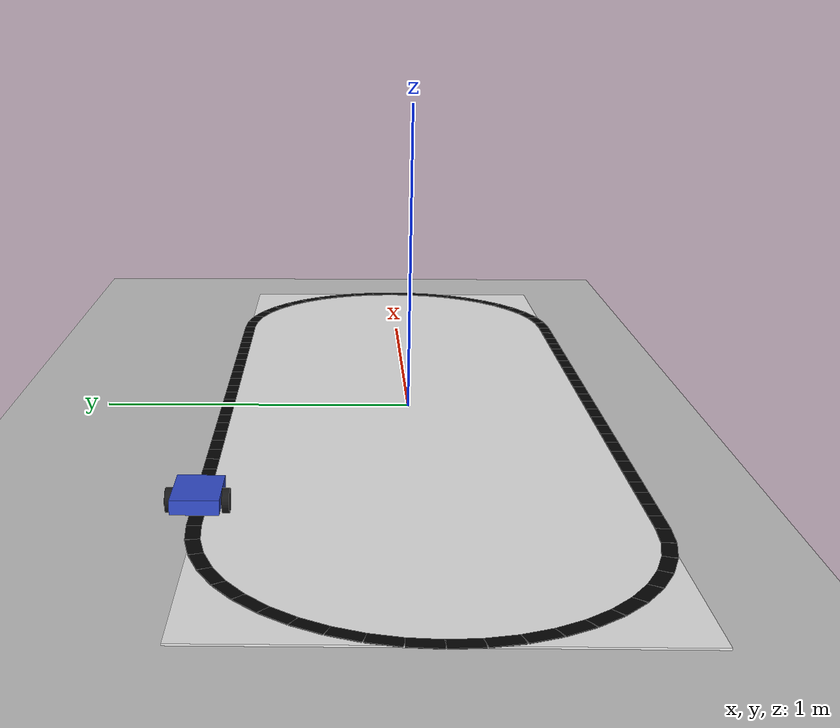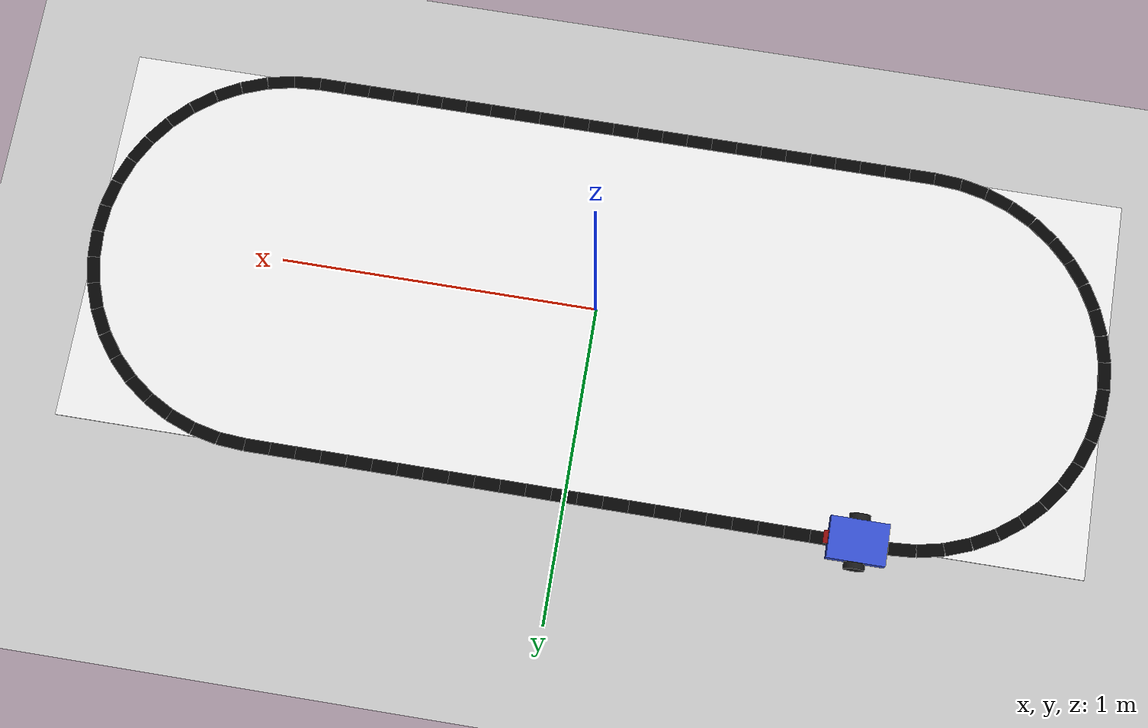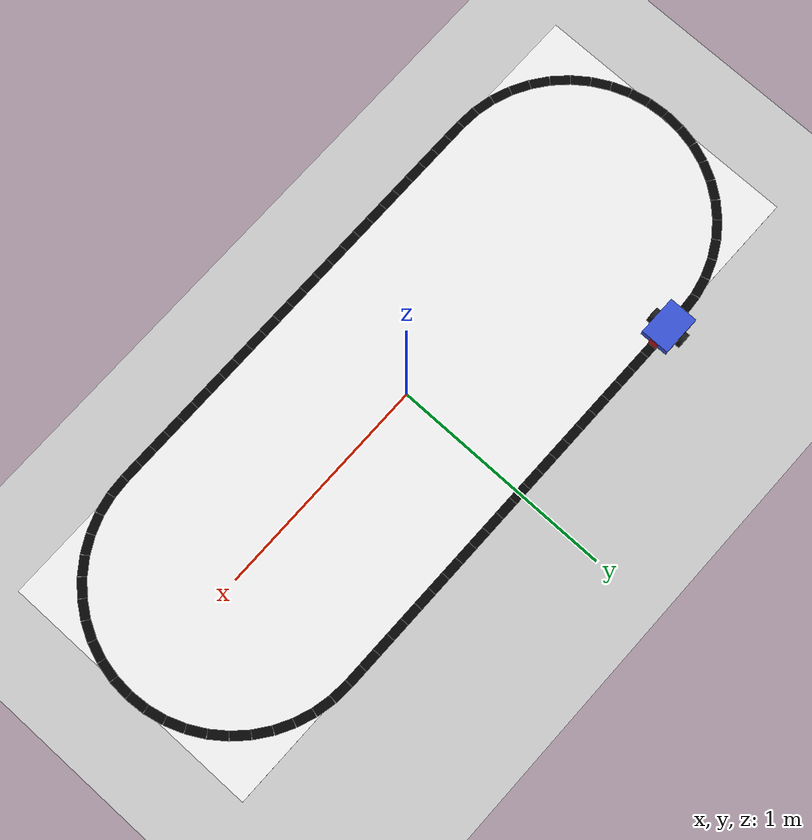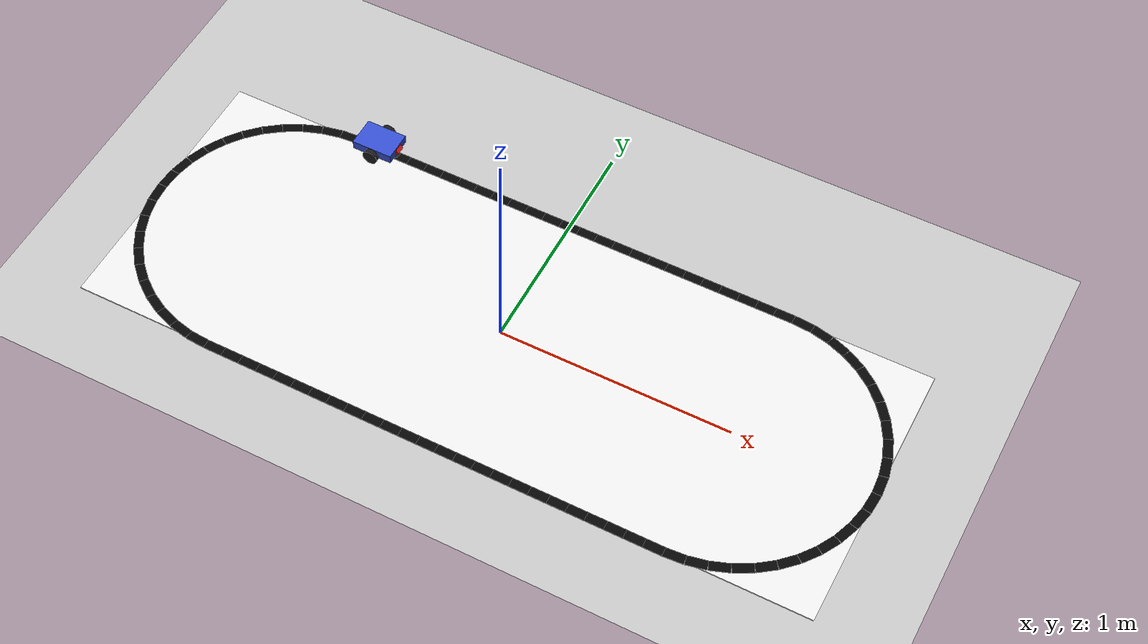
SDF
<sdf version="1.9">
 <world name="line_follower_world">
  <model name="ground_plane">
   <static>true</static>
   <link name="link">
    <collision name="collision">
     <geometry><plane><normal>0 0 1</normal><size>8 6</size></plane></geometry>
    </collision>
    <visual name="visual">
     <geometry><plane><normal>0 0 1</normal><size>8 6</size></plane></geometry>
     <material>
      <ambient>0.75 0.75 0.75 1</ambient>
      <diffuse>0.75 0.75 0.75 1</diffuse>
      <specular>0.1 0.1 0.1 1</specular>
     </material>
    </visual>
   </link>
  </model>
  <model name="line_track">
   <static>true</static>
   <link name="track_link">
    <visual name="track_visual">
     <geometry><box><size>3.2 1.2 0.005</size></box></geometry>
     <material><ambient>0.9 0.9 0.9 1</ambient><diffuse>0.9 0.9 0.9 1</diffuse></material>
    </visual>
    <visual name="line_segment_0">
     <pose>-0.9600 0.6000 0.006 0 0 0.0000</pose>
     <geometry><box><size>0.0800 0.04 0.002</size></box></geometry>
     <material>
      <ambient>0.02 0.02 0.02 1</ambient>
      <diffuse>0.02 0.02 0.02 1</diffuse>
      <specular>0.05 0.05 0.05 1</specular>
     </material>
    </visual>
    <visual name="line_segment_1">
     <pose>-0.8800 0.6000 0.006 0 0 0.0000</pose>
     <geometry><box><size>0.0800 0.04 0.002</size></box></geometry>
     <material>
      <ambient>0.02 0.02 0.02 1</ambient>
      <diffuse>0.02 0.02 0.02 1</diffuse>
      <specular>0.05 0.05 0.05 1</specular>
     </material>
    </visual>
    <visual name="line_segment_2">
     <pose>-0.8000 0.6000 0.006 0 0 0.0000</pose>
     <geometry><box><size>0.0800 0.04 0.002</size></box></geometry>
     <material>
      <ambient>0.02 0.02 0.02 1</ambient>
      <diffuse>0.02 0.02 0.02 1</diffuse>
      <specular>0.05 0.05 0.05 1</specular>
     </material>
    </visual>
    <visual name="line_segment_3">
     <pose>-0.7200 0.6000 0.006 0 0 0.0000</pose>
     <geometry><box><size>0.0800 0.04 0.002</size></box></geometry>
     <material>
      <ambient>0.02 0.02 0.02 1</ambient>
      <diffuse>0.02 0.02 0.02 1</diffuse>
      <specular>0.05 0.05 0.05 1</specular>
     </material>
    </visual>
    <visual name="line_segment_4">
     <pose>-0.6400 0.6000 0.006 0 0 0.0000</pose>
     <geometry><box><size>0.0800 0.04 0.002</size></box></geometry>
     <material>
      <ambient>0.02 0.02 0.02 1</ambient>
      <diffuse>0.02 0.02 0.02 1</diffuse>
      <specular>0.05 0.05 0.05 1</specular>
     </material>
    </visual>
    <visual name="line_segment_5">
     <pose>-0.5600 0.6000 0.006 0 0 0.0000</pose>
     <geometry><box><size>0.0800 0.04 0.002</size></box></geometry>
     <material>
      <ambient>0.02 0.02 0.02 1</ambient>
      <diffuse>0.02 0.02 0.02 1</diffuse>
      <specular>0.05 0.05 0.05 1</specular>
     </material>
    </visual>
    <visual name="line_segment_6">
     <pose>-0.4800 0.6000 0.006 0 0 0.0000</pose>
     <geometry><box><size>0.0800 0.04 0.002</size></box></geometry>
     <material>
      <ambient>0.02 0.02 0.02 1</ambient>
      <diffuse>0.02 0.02 0.02 1</diffuse>
      <specular>0.05 0.05 0.05 1</specular>
     </material>
    </visual>
    <visual name="line_segment_7">
     <pose>-0.4000 0.6000 0.006 0 0 0.0000</pose>
     <geometry><box><size>0.0800 0.04 0.002</size></box></geometry>
     <material>
      <ambient>0.02 0.02 0.02 1</ambient>
      <diffuse>0.02 0.02 0.02 1</diffuse>
      <specular>0.05 0.05 0.05 1</specular>
     </material>
    </visual>
    <visual name="line_segment_8">
     <pose>-0.3200 0.6000 0.006 0 0 0.0000</pose>
     <geometry><box><size>0.0800 0.04 0.002</size></box></geometry>
     <material>
      <ambient>0.02 0.02 0.02 1</ambient>
      <diffuse>0.02 0.02 0.02 1</diffuse>
      <specular>0.05 0.05 0.05 1</specular>
     </material>
    </visual>
    <visual name="line_segment_9">
     <pose>-0.2400 0.6000 0.006 0 0 0.0000</pose>
     <geometry><box><size>0.0800 0.04 0.002</size></box></geometry>
     <material>
      <ambient>0.02 0.02 0.02 1</ambient>
      <diffuse>0.02 0.02 0.02 1</diffuse>
      <specular>0.05 0.05 0.05 1</specular>
     </material>
    </visual>
    <visual name="line_segment_10">
     <pose>-0.1600 0.6000 0.006 0 0 0.0000</pose>
     <geometry><box><size>0.0800 0.04 0.002</size></box></geometry>
     <material>
      <ambient>0.02 0.02 0.02 1</ambient>
      <diffuse>0.02 0.02 0.02 1</diffuse>
      <specular>0.05 0.05 0.05 1</specular>
     </material>
    </visual>
    <visual name="line_segment_11">
     <pose>-0.0800 0.6000 0.006 0 0 0.0000</pose>
     <geometry><box><size>0.0800 0.04 0.002</size></box></geometry>
     <material>
      <ambient>0.02 0.02 0.02 1</ambient>
      <diffuse>0.02 0.02 0.02 1</diffuse>
      <specular>0.05 0.05 0.05 1</specular>
     </material>
    </visual>
    <visual name="line_segment_12">
     <pose>0.0000 0.6000 0.006 0 0 0.0000</pose>
     <geometry><box><size>0.0800 0.04 0.002</size></box></geometry>
     <material>
      <ambient>0.02 0.02 0.02 1</ambient>
      <diffuse>0.02 0.02 0.02 1</diffuse>
      <specular>0.05 0.05 0.05 1</specular>
     </material>
    </visual>
    <visual name="line_segment_13">
     <pose>0.0800 0.6000 0.006 0 0 0.0000</pose>
     <geometry><box><size>0.0800 0.04 0.002</size></box></geometry>
     <material>
      <ambient>0.02 0.02 0.02 1</ambient>
      <diffuse>0.02 0.02 0.02 1</diffuse>
      <specular>0.05 0.05 0.05 1</specular>
     </material>
    </visual>
    <visual name="line_segment_14">
     <pose>0.1600 0.6000 0.006 0 0 0.0000</pose>
     <geometry><box><size>0.0800 0.04 0.002</size></box></geometry>
     <material>
      <ambient>0.02 0.02 0.02 1</ambient>
      <diffuse>0.02 0.02 0.02 1</diffuse>
      <specular>0.05 0.05 0.05 1</specular>
     </material>
    </visual>
    <visual name="line_segment_15">
     <pose>0.2400 0.6000 0.006 0 0 0.0000</pose>
     <geometry><box><size>0.0800 0.04 0.002</size></box></geometry>
     <material>
      <ambient>0.02 0.02 0.02 1</ambient>
      <diffuse>0.02 0.02 0.02 1</diffuse>
      <specular>0.05 0.05 0.05 1</specular>
     </material>
    </visual>
    <visual name="line_segment_16">
     <pose>0.3200 0.6000 0.006 0 0 0.0000</pose>
     <geometry><box><size>0.0800 0.04 0.002</size></box></geometry>
     <material>
      <ambient>0.02 0.02 0.02 1</ambient>
      <diffuse>0.02 0.02 0.02 1</diffuse>
      <specular>0.05 0.05 0.05 1</specular>
     </material>
    </visual>
    <visual name="line_segment_17">
     <pose>0.4000 0.6000 0.006 0 0 0.0000</pose>
     <geometry><box><size>0.0800 0.04 0.002</size></box></geometry>
     <material>
      <ambient>0.02 0.02 0.02 1</ambient>
      <diffuse>0.02 0.02 0.02 1</diffuse>
      <specular>0.05 0.05 0.05 1</specular>
     </material>
    </visual>
    <visual name="line_segment_18">
     <pose>0.4800 0.6000 0.006 0 0 0.0000</pose>
     <geometry><box><size>0.0800 0.04 0.002</size></box></geometry>
     <material>
      <ambient>0.02 0.02 0.02 1</ambient>
      <diffuse>0.02 0.02 0.02 1</diffuse>
      <specular>0.05 0.05 0.05 1</specular>
     </material>
    </visual>
    <visual name="line_segment_19">
     <pose>0.5600 0.6000 0.006 0 0 0.0000</pose>
     <geometry><box><size>0.0800 0.04 0.002</size></box></geometry>
     <material>
      <ambient>0.02 0.02 0.02 1</ambient>
      <diffuse>0.02 0.02 0.02 1</diffuse>
      <specular>0.05 0.05 0.05 1</specular>
     </material>
    </visual>
    <visual name="line_segment_20">
     <pose>0.6400 0.6000 0.006 0 0 0.0000</pose>
     <geometry><box><size>0.0800 0.04 0.002</size></box></geometry>
     <material>
      <ambient>0.02 0.02 0.02 1</ambient>
      <diffuse>0.02 0.02 0.02 1</diffuse>
      <specular>0.05 0.05 0.05 1</specular>
     </material>
    </visual>
    <visual name="line_segment_21">
     <pose>0.7200 0.6000 0.006 0 0 0.0000</pose>
     <geometry><box><size>0.0800 0.04 0.002</size></box></geometry>
     <material>
      <ambient>0.02 0.02 0.02 1</ambient>
      <diffuse>0.02 0.02 0.02 1</diffuse>
      <specular>0.05 0.05 0.05 1</specular>
     </material>
    </visual>
    <visual name="line_segment_22">
     <pose>0.8000 0.6000 0.006 0 0 0.0000</pose>
     <geometry><box><size>0.0800 0.04 0.002</size></box></geometry>
     <material>
      <ambient>0.02 0.02 0.02 1</ambient>
      <diffuse>0.02 0.02 0.02 1</diffuse>
      <specular>0.05 0.05 0.05 1</specular>
     </material>
    </visual>
    <visual name="line_segment_23">
     <pose>0.8800 0.6000 0.006 0 0 0.0000</pose>
     <geometry><box><size>0.0800 0.04 0.002</size></box></geometry>
     <material>
      <ambient>0.02 0.02 0.02 1</ambient>
      <diffuse>0.02 0.02 0.02 1</diffuse>
      <specular>0.05 0.05 0.05 1</specular>
     </material>
    </visual>
    <visual name="line_segment_24">
     <pose>0.9600 0.6000 0.006 0 0 0.0000</pose>
     <geometry><box><size>0.0800 0.04 0.002</size></box></geometry>
     <material>
      <ambient>0.02 0.02 0.02 1</ambient>
      <diffuse>0.02 0.02 0.02 1</diffuse>
      <specular>0.05 0.05 0.05 1</specular>
     </material>
    </visual>
    <visual name="line_segment_25">
     <pose>1.0427 0.5969 0.006 0 0 -0.0714</pose>
     <geometry><box><size>0.0856 0.04 0.002</size></box></geometry>
     <material>
      <ambient>0.02 0.02 0.02 1</ambient>
      <diffuse>0.02 0.02 0.02 1</diffuse>
      <specular>0.05 0.05 0.05 1</specular>
     </material>
    </visual>
    <visual name="line_segment_26">
     <pose>1.1272 0.5848 0.006 0 0 -0.2142</pose>
     <geometry><box><size>0.0856 0.04 0.002</size></box></geometry>
     <material>
      <ambient>0.02 0.02 0.02 1</ambient>
      <diffuse>0.02 0.02 0.02 1</diffuse>
      <specular>0.05 0.05 0.05 1</specular>
     </material>
    </visual>
    <visual name="line_segment_27">
     <pose>1.2091 0.5607 0.006 0 0 -0.3570</pose>
     <geometry><box><size>0.0856 0.04 0.002</size></box></geometry>
     <material>
      <ambient>0.02 0.02 0.02 1</ambient>
      <diffuse>0.02 0.02 0.02 1</diffuse>
      <specular>0.05 0.05 0.05 1</specular>
     </material>
    </visual>
    <visual name="line_segment_28">
     <pose>1.2868 0.5253 0.006 0 0 -0.4998</pose>
     <geometry><box><size>0.0856 0.04 0.002</size></box></geometry>
     <material>
      <ambient>0.02 0.02 0.02 1</ambient>
      <diffuse>0.02 0.02 0.02 1</diffuse>
      <specular>0.05 0.05 0.05 1</specular>
     </material>
    </visual>
    <visual name="line_segment_29">
     <pose>1.3587 0.4791 0.006 0 0 -0.6426</pose>
     <geometry><box><size>0.0856 0.04 0.002</size></box></geometry>
     <material>
      <ambient>0.02 0.02 0.02 1</ambient>
      <diffuse>0.02 0.02 0.02 1</diffuse>
      <specular>0.05 0.05 0.05 1</specular>
     </material>
    </visual>
    <visual name="line_segment_30">
     <pose>1.4232 0.4232 0.006 0 0 -0.7854</pose>
     <geometry><box><size>0.0856 0.04 0.002</size></box></geometry>
     <material>
      <ambient>0.02 0.02 0.02 1</ambient>
      <diffuse>0.02 0.02 0.02 1</diffuse>
      <specular>0.05 0.05 0.05 1</specular>
     </material>
    </visual>
    <visual name="line_segment_31">
     <pose>1.4791 0.3587 0.006 0 0 -0.9282</pose>
     <geometry><box><size>0.0856 0.04 0.002</size></box></geometry>
     <material>
      <ambient>0.02 0.02 0.02 1</ambient>
      <diffuse>0.02 0.02 0.02 1</diffuse>
      <specular>0.05 0.05 0.05 1</specular>
     </material>
    </visual>
    <visual name="line_segment_32">
     <pose>1.5253 0.2868 0.006 0 0 -1.0710</pose>
     <geometry><box><size>0.0856 0.04 0.002</size></box></geometry>
     <material>
      <ambient>0.02 0.02 0.02 1</ambient>
      <diffuse>0.02 0.02 0.02 1</diffuse>
      <specular>0.05 0.05 0.05 1</specular>
     </material>
    </visual>
    <visual name="line_segment_33">
     <pose>1.5607 0.2091 0.006 0 0 -1.2138</pose>
     <geometry><box><size>0.0856 0.04 0.002</size></box></geometry>
     <material>
      <ambient>0.02 0.02 0.02 1</ambient>
      <diffuse>0.02 0.02 0.02 1</diffuse>
      <specular>0.05 0.05 0.05 1</specular>
     </material>
    </visual>
    <visual name="line_segment_34">
     <pose>1.5848 0.1272 0.006 0 0 -1.3566</pose>
     <geometry><box><size>0.0856 0.04 0.002</size></box></geometry>
     <material>
      <ambient>0.02 0.02 0.02 1</ambient>
      <diffuse>0.02 0.02 0.02 1</diffuse>
      <specular>0.05 0.05 0.05 1</specular>
     </material>
    </visual>
    <visual name="line_segment_35">
     <pose>1.5969 0.0427 0.006 0 0 -1.4994</pose>
     <geometry><box><size>0.0856 0.04 0.002</size></box></geometry>
     <material>
      <ambient>0.02 0.02 0.02 1</ambient>
      <diffuse>0.02 0.02 0.02 1</diffuse>
      <specular>0.05 0.05 0.05 1</specular>
     </material>
    </visual>
    <visual name="line_segment_36">
     <pose>1.5969 -0.0427 0.006 0 0 -1.6422</pose>
     <geometry><box><size>0.0856 0.04 0.002</size></box></geometry>
     <material>
      <ambient>0.02 0.02 0.02 1</ambient>
      <diffuse>0.02 0.02 0.02 1</diffuse>
      <specular>0.05 0.05 0.05 1</specular>
     </material>
    </visual>
    <visual name="line_segment_37">
     <pose>1.5848 -0.1272 0.006 0 0 -1.7850</pose>
     <geometry><box><size>0.0856 0.04 0.002</size></box></geometry>
     <material>
      <ambient>0.02 0.02 0.02 1</ambient>
      <diffuse>0.02 0.02 0.02 1</diffuse>
      <specular>0.05 0.05 0.05 1</specular>
     </material>
    </visual>
    <visual name="line_segment_38">
     <pose>1.5607 -0.2091 0.006 0 0 -1.9278</pose>
     <geometry><box><size>0.0856 0.04 0.002</size></box></geometry>
     <material>
      <ambient>0.02 0.02 0.02 1</ambient>
      <diffuse>0.02 0.02 0.02 1</diffuse>
      <specular>0.05 0.05 0.05 1</specular>
     </material>
    </visual>
    <visual name="line_segment_39">
     <pose>1.5253 -0.2868 0.006 0 0 -2.0706</pose>
     <geometry><box><size>0.0856 0.04 0.002</size></box></geometry>
     <material>
      <ambient>0.02 0.02 0.02 1</ambient>
      <diffuse>0.02 0.02 0.02 1</diffuse>
      <specular>0.05 0.05 0.05 1</specular>
     </material>
    </visual>
    <visual name="line_segment_40">
     <pose>1.4791 -0.3587 0.006 0 0 -2.2134</pose>
     <geometry><box><size>0.0856 0.04 0.002</size></box></geometry>
     <material>
      <ambient>0.02 0.02 0.02 1</ambient>
      <diffuse>0.02 0.02 0.02 1</diffuse>
      <specular>0.05 0.05 0.05 1</specular>
     </material>
    </visual>
    <visual name="line_segment_41">
     <pose>1.4232 -0.4232 0.006 0 0 -2.3562</pose>
     <geometry><box><size>0.0856 0.04 0.002</size></box></geometry>
     <material>
      <ambient>0.02 0.02 0.02 1</ambient>
      <diffuse>0.02 0.02 0.02 1</diffuse>
      <specular>0.05 0.05 0.05 1</specular>
     </material>
    </visual>
    <visual name="line_segment_42">
     <pose>1.3587 -0.4791 0.006 0 0 -2.4990</pose>
     <geometry><box><size>0.0856 0.04 0.002</size></box></geometry>
     <material>
      <ambient>0.02 0.02 0.02 1</ambient>
      <diffuse>0.02 0.02 0.02 1</diffuse>
      <specular>0.05 0.05 0.05 1</specular>
     </material>
    </visual>
    <visual name="line_segment_43">
     <pose>1.2868 -0.5253 0.006 0 0 -2.6418</pose>
     <geometry><box><size>0.0856 0.04 0.002</size></box></geometry>
     <material>
      <ambient>0.02 0.02 0.02 1</ambient>
      <diffuse>0.02 0.02 0.02 1</diffuse>
      <specular>0.05 0.05 0.05 1</specular>
     </material>
    </visual>
    <visual name="line_segment_44">
     <pose>1.2091 -0.5607 0.006 0 0 -2.7846</pose>
     <geometry><box><size>0.0856 0.04 0.002</size></box></geometry>
     <material>
      <ambient>0.02 0.02 0.02 1</ambient>
      <diffuse>0.02 0.02 0.02 1</diffuse>
      <specular>0.05 0.05 0.05 1</specular>
     </material>
    </visual>
    <visual name="line_segment_45">
     <pose>1.1272 -0.5848 0.006 0 0 -2.9274</pose>
     <geometry><box><size>0.0856 0.04 0.002</size></box></geometry>
     <material>
      <ambient>0.02 0.02 0.02 1</ambient>
      <diffuse>0.02 0.02 0.02 1</diffuse>
      <specular>0.05 0.05 0.05 1</specular>
     </material>
    </visual>
    <visual name="line_segment_46">
     <pose>1.0427 -0.5969 0.006 0 0 -3.0702</pose>
     <geometry><box><size>0.0856 0.04 0.002</size></box></geometry>
     <material>
      <ambient>0.02 0.02 0.02 1</ambient>
      <diffuse>0.02 0.02 0.02 1</diffuse>
      <specular>0.05 0.05 0.05 1</specular>
     </material>
    </visual>
    <visual name="line_segment_47">
     <pose>0.9600 -0.6000 0.006 0 0 3.1416</pose>
     <geometry><box><size>0.0800 0.04 0.002</size></box></geometry>
     <material>
      <ambient>0.02 0.02 0.02 1</ambient>
      <diffuse>0.02 0.02 0.02 1</diffuse>
      <specular>0.05 0.05 0.05 1</specular>
     </material>
    </visual>
    <visual name="line_segment_48">
     <pose>0.8800 -0.6000 0.006 0 0 3.1416</pose>
     <geometry><box><size>0.0800 0.04 0.002</size></box></geometry>
     <material>
      <ambient>0.02 0.02 0.02 1</ambient>
      <diffuse>0.02 0.02 0.02 1</diffuse>
      <specular>0.05 0.05 0.05 1</specular>
     </material>
    </visual>
    <visual name="line_segment_49">
     <pose>0.8000 -0.6000 0.006 0 0 3.1416</pose>
     <geometry><box><size>0.0800 0.04 0.002</size></box></geometry>
     <material>
      <ambient>0.02 0.02 0.02 1</ambient>
      <diffuse>0.02 0.02 0.02 1</diffuse>
      <specular>0.05 0.05 0.05 1</specular>
     </material>
    </visual>
    <visual name="line_segment_50">
     <pose>0.7200 -0.6000 0.006 0 0 3.1416</pose>
     <geometry><box><size>0.0800 0.04 0.002</size></box></geometry>
     <material>
      <ambient>0.02 0.02 0.02 1</ambient>
      <diffuse>0.02 0.02 0.02 1</diffuse>
      <specular>0.05 0.05 0.05 1</specular>
     </material>
    </visual>
    <visual name="line_segment_51">
     <pose>0.6400 -0.6000 0.006 0 0 3.1416</pose>
     <geometry><box><size>0.0800 0.04 0.002</size></box></geometry>
     <material>
      <ambient>0.02 0.02 0.02 1</ambient>
      <diffuse>0.02 0.02 0.02 1</diffuse>
      <specular>0.05 0.05 0.05 1</specular>
     </material>
    </visual>
    <visual name="line_segment_52">
     <pose>0.5600 -0.6000 0.006 0 0 3.1416</pose>
     <geometry><box><size>0.0800 0.04 0.002</size></box></geometry>
     <material>
      <ambient>0.02 0.02 0.02 1</ambient>
      <diffuse>0.02 0.02 0.02 1</diffuse>
      <specular>0.05 0.05 0.05 1</specular>
     </material>
    </visual>
    <visual name="line_segment_53">
     <pose>0.4800 -0.6000 0.006 0 0 3.1416</pose>
     <geometry><box><size>0.0800 0.04 0.002</size></box></geometry>
     <material>
      <ambient>0.02 0.02 0.02 1</ambient>
      <diffuse>0.02 0.02 0.02 1</diffuse>
      <specular>0.05 0.05 0.05 1</specular>
     </material>
    </visual>
    <visual name="line_segment_54">
     <pose>0.4000 -0.6000 0.006 0 0 3.1416</pose>
     <geometry><box><size>0.0800 0.04 0.002</size></box></geometry>
     <material>
      <ambient>0.02 0.02 0.02 1</ambient>
      <diffuse>0.02 0.02 0.02 1</diffuse>
      <specular>0.05 0.05 0.05 1</specular>
     </material>
    </visual>
    <visual name="line_segment_55">
     <pose>0.3200 -0.6000 0.006 0 0 3.1416</pose>
     <geometry><box><size>0.0800 0.04 0.002</size></box></geometry>
     <material>
      <ambient>0.02 0.02 0.02 1</ambient>
      <diffuse>0.02 0.02 0.02 1</diffuse>
      <specular>0.05 0.05 0.05 1</specular>
     </material>
    </visual>
    <visual name="line_segment_56">
     <pose>0.2400 -0.6000 0.006 0 0 3.1416</pose>
     <geometry><box><size>0.0800 0.04 0.002</size></box></geometry>
     <material>
      <ambient>0.02 0.02 0.02 1</ambient>
      <diffuse>0.02 0.02 0.02 1</diffuse>
      <specular>0.05 0.05 0.05 1</specular>
     </material>
    </visual>
    <visual name="line_segment_57">
     <pose>0.1600 -0.6000 0.006 0 0 3.1416</pose>
     <geometry><box><size>0.0800 0.04 0.002</size></box></geometry>
     <material>
      <ambient>0.02 0.02 0.02 1</ambient>
      <diffuse>0.02 0.02 0.02 1</diffuse>
      <specular>0.05 0.05 0.05 1</specular>
     </material>
    </visual>
    <visual name="line_segment_58">
     <pose>0.0800 -0.6000 0.006 0 0 3.1416</pose>
     <geometry><box><size>0.0800 0.04 0.002</size></box></geometry>
     <material>
      <ambient>0.02 0.02 0.02 1</ambient>
      <diffuse>0.02 0.02 0.02 1</diffuse>
      <specular>0.05 0.05 0.05 1</specular>
     </material>
    </visual>
    <visual name="line_segment_59">
     <pose>0.0000 -0.6000 0.006 0 0 3.1416</pose>
     <geometry><box><size>0.0800 0.04 0.002</size></box></geometry>
     <material>
      <ambient>0.02 0.02 0.02 1</ambient>
      <diffuse>0.02 0.02 0.02 1</diffuse>
      <specular>0.05 0.05 0.05 1</specular>
     </material>
    </visual>
    <visual name="line_segment_60">
     <pose>-0.0800 -0.6000 0.006 0 0 3.1416</pose>
     <geometry><box><size>0.0800 0.04 0.002</size></box></geometry>
     <material>
      <ambient>0.02 0.02 0.02 1</ambient>
      <diffuse>0.02 0.02 0.02 1</diffuse>
      <specular>0.05 0.05 0.05 1</specular>
     </material>
    </visual>
    <visual name="line_segment_61">
     <pose>-0.1600 -0.6000 0.006 0 0 3.1416</pose>
     <geometry><box><size>0.0800 0.04 0.002</size></box></geometry>
     <material>
      <ambient>0.02 0.02 0.02 1</ambient>
      <diffuse>0.02 0.02 0.02 1</diffuse>
      <specular>0.05 0.05 0.05 1</specular>
     </material>
    </visual>
    <visual name="line_segment_62">
     <pose>-0.2400 -0.6000 0.006 0 0 3.1416</pose>
     <geometry><box><size>0.0800 0.04 0.002</size></box></geometry>
     <material>
      <ambient>0.02 0.02 0.02 1</ambient>
      <diffuse>0.02 0.02 0.02 1</diffuse>
      <specular>0.05 0.05 0.05 1</specular>
     </material>
    </visual>
    <visual name="line_segment_63">
     <pose>-0.3200 -0.6000 0.006 0 0 3.1416</pose>
     <geometry><box><size>0.0800 0.04 0.002</size></box></geometry>
     <material>
      <ambient>0.02 0.02 0.02 1</ambient>
      <diffuse>0.02 0.02 0.02 1</diffuse>
      <specular>0.05 0.05 0.05 1</specular>
     </material>
    </visual>
    <visual name="line_segment_64">
     <pose>-0.4000 -0.6000 0.006 0 0 3.1416</pose>
     <geometry><box><size>0.0800 0.04 0.002</size></box></geometry>
     <material>
      <ambient>0.02 0.02 0.02 1</ambient>
      <diffuse>0.02 0.02 0.02 1</diffuse>
      <specular>0.05 0.05 0.05 1</specular>
     </material>
    </visual>
    <visual name="line_segment_65">
     <pose>-0.4800 -0.6000 0.006 0 0 3.1416</pose>
     <geometry><box><size>0.0800 0.04 0.002</size></box></geometry>
     <material>
      <ambient>0.02 0.02 0.02 1</ambient>
      <diffuse>0.02 0.02 0.02 1</diffuse>
      <specular>0.05 0.05 0.05 1</specular>
     </material>
    </visual>
    <visual name="line_segment_66">
     <pose>-0.5600 -0.6000 0.006 0 0 3.1416</pose>
     <geometry><box><size>0.0800 0.04 0.002</size></box></geometry>
     <material>
      <ambient>0.02 0.02 0.02 1</ambient>
      <diffuse>0.02 0.02 0.02 1</diffuse>
      <specular>0.05 0.05 0.05 1</specular>
     </material>
    </visual>
    <visual name="line_segment_67">
     <pose>-0.6400 -0.6000 0.006 0 0 3.1416</pose>
     <geometry><box><size>0.0800 0.04 0.002</size></box></geometry>
     <material>
      <ambient>0.02 0.02 0.02 1</ambient>
      <diffuse>0.02 0.02 0.02 1</diffuse>
      <specular>0.05 0.05 0.05 1</specular>
     </material>
    </visual>
    <visual name="line_segment_68">
     <pose>-0.7200 -0.6000 0.006 0 0 3.1416</pose>
     <geometry><box><size>0.0800 0.04 0.002</size></box></geometry>
     <material>
      <ambient>0.02 0.02 0.02 1</ambient>
      <diffuse>0.02 0.02 0.02 1</diffuse>
      <specular>0.05 0.05 0.05 1</specular>
     </material>
    </visual>
    <visual name="line_segment_69">
     <pose>-0.8000 -0.6000 0.006 0 0 3.1416</pose>
     <geometry><box><size>0.0800 0.04 0.002</size></box></geometry>
     <material>
      <ambient>0.02 0.02 0.02 1</ambient>
      <diffuse>0.02 0.02 0.02 1</diffuse>
      <specular>0.05 0.05 0.05 1</specular>
     </material>
    </visual>
    <visual name="line_segment_70">
     <pose>-0.8800 -0.6000 0.006 0 0 3.1416</pose>
     <geometry><box><size>0.0800 0.04 0.002</size></box></geometry>
     <material>
      <ambient>0.02 0.02 0.02 1</ambient>
      <diffuse>0.02 0.02 0.02 1</diffuse>
      <specular>0.05 0.05 0.05 1</specular>
     </material>
    </visual>
    <visual name="line_segment_71">
     <pose>-0.9600 -0.6000 0.006 0 0 3.1416</pose>
     <geometry><box><size>0.0800 0.04 0.002</size></box></geometry>
     <material>
      <ambient>0.02 0.02 0.02 1</ambient>
      <diffuse>0.02 0.02 0.02 1</diffuse>
      <specular>0.05 0.05 0.05 1</specular>
     </material>
    </visual>
    <visual name="line_segment_72">
     <pose>-1.0427 -0.5969 0.006 0 0 3.0702</pose>
     <geometry><box><size>0.0856 0.04 0.002</size></box></geometry>
     <material>
      <ambient>0.02 0.02 0.02 1</ambient>
      <diffuse>0.02 0.02 0.02 1</diffuse>
      <specular>0.05 0.05 0.05 1</specular>
     </material>
    </visual>
    <visual name="line_segment_73">
     <pose>-1.1272 -0.5848 0.006 0 0 2.9274</pose>
     <geometry><box><size>0.0856 0.04 0.002</size></box></geometry>
     <material>
      <ambient>0.02 0.02 0.02 1</ambient>
      <diffuse>0.02 0.02 0.02 1</diffuse>
      <specular>0.05 0.05 0.05 1</specular>
     </material>
    </visual>
    <visual name="line_segment_74">
     <pose>-1.2091 -0.5607 0.006 0 0 2.7846</pose>
     <geometry><box><size>0.0856 0.04 0.002</size></box></geometry>
     <material>
      <ambient>0.02 0.02 0.02 1</ambient>
      <diffuse>0.02 0.02 0.02 1</diffuse>
      <specular>0.05 0.05 0.05 1</specular>
     </material>
    </visual>
    <visual name="line_segment_75">
     <pose>-1.2868 -0.5253 0.006 0 0 2.6418</pose>
     <geometry><box><size>0.0856 0.04 0.002</size></box></geometry>
     <material>
      <ambient>0.02 0.02 0.02 1</ambient>
      <diffuse>0.02 0.02 0.02 1</diffuse>
      <specular>0.05 0.05 0.05 1</specular>
     </material>
    </visual>
    <visual name="line_segment_76">
     <pose>-1.3587 -0.4791 0.006 0 0 2.4990</pose>
     <geometry><box><size>0.0856 0.04 0.002</size></box></geometry>
     <material>
      <ambient>0.02 0.02 0.02 1</ambient>
      <diffuse>0.02 0.02 0.02 1</diffuse>
      <specular>0.05 0.05 0.05 1</specular>
     </material>
    </visual>
    <visual name="line_segment_77">
     <pose>-1.4232 -0.4232 0.006 0 0 2.3562</pose>
     <geometry><box><size>0.0856 0.04 0.002</size></box></geometry>
     <material>
      <ambient>0.02 0.02 0.02 1</ambient>
      <diffuse>0.02 0.02 0.02 1</diffuse>
      <specular>0.05 0.05 0.05 1</specular>
     </material>
    </visual>
    <visual name="line_segment_78">
     <pose>-1.4791 -0.3587 0.006 0 0 2.2134</pose>
     <geometry><box><size>0.0856 0.04 0.002</size></box></geometry>
     <material>
      <ambient>0.02 0.02 0.02 1</ambient>
      <diffuse>0.02 0.02 0.02 1</diffuse>
      <specular>0.05 0.05 0.05 1</specular>
     </material>
    </visual>
    <visual name="line_segment_79">
     <pose>-1.5253 -0.2868 0.006 0 0 2.0706</pose>
     <geometry><box><size>0.0856 0.04 0.002</size></box></geometry>
     <material>
      <ambient>0.02 0.02 0.02 1</ambient>
      <diffuse>0.02 0.02 0.02 1</diffuse>
      <specular>0.05 0.05 0.05 1</specular>
     </material>
    </visual>
    <visual name="line_segment_80">
     <pose>-1.5607 -0.2091 0.006 0 0 1.9278</pose>
     <geometry><box><size>0.0856 0.04 0.002</size></box></geometry>
     <material>
      <ambient>0.02 0.02 0.02 1</ambient>
      <diffuse>0.02 0.02 0.02 1</diffuse>
      <specular>0.05 0.05 0.05 1</specular>
     </material>
    </visual>
    <visual name="line_segment_81">
     <pose>-1.5848 -0.1272 0.006 0 0 1.7850</pose>
     <geometry><box><size>0.0856 0.04 0.002</size></box></geometry>
     <material>
      <ambient>0.02 0.02 0.02 1</ambient>
      <diffuse>0.02 0.02 0.02 1</diffuse>
      <specular>0.05 0.05 0.05 1</specular>
     </material>
    </visual>
    <visual name="line_segment_82">
     <pose>-1.5969 -0.0427 0.006 0 0 1.6422</pose>
     <geometry><box><size>0.0856 0.04 0.002</size></box></geometry>
     <material>
      <ambient>0.02 0.02 0.02 1</ambient>
      <diffuse>0.02 0.02 0.02 1</diffuse>
      <specular>0.05 0.05 0.05 1</specular>
     </material>
    </visual>
    <visual name="line_segment_83">
     <pose>-1.5969 0.0427 0.006 0 0 1.4994</pose>
     <geometry><box><size>0.0856 0.04 0.002</size></box></geometry>
     <material>
      <ambient>0.02 0.02 0.02 1</ambient>
      <diffuse>0.02 0.02 0.02 1</diffuse>
      <specular>0.05 0.05 0.05 1</specular>
     </material>
    </visual>
    <visual name="line_segment_84">
     <pose>-1.5848 0.1272 0.006 0 0 1.3566</pose>
     <geometry><box><size>0.0856 0.04 0.002</size></box></geometry>
     <material>
      <ambient>0.02 0.02 0.02 1</ambient>
      <diffuse>0.02 0.02 0.02 1</diffuse>
      <specular>0.05 0.05 0.05 1</specular>
     </material>
    </visual>
    <visual name="line_segment_85">
     <pose>-1.5607 0.2091 0.006 0 0 1.2138</pose>
     <geometry><box><size>0.0856 0.04 0.002</size></box></geometry>
     <material>
      <ambient>0.02 0.02 0.02 1</ambient>
      <diffuse>0.02 0.02 0.02 1</diffuse>
      <specular>0.05 0.05 0.05 1</specular>
     </material>
    </visual>
    <visual name="line_segment_86">
     <pose>-1.5253 0.2868 0.006 0 0 1.0710</pose>
     <geometry><box><size>0.0856 0.04 0.002</size></box></geometry>
     <material>
      <ambient>0.02 0.02 0.02 1</ambient>
      <diffuse>0.02 0.02 0.02 1</diffuse>
      <specular>0.05 0.05 0.05 1</specular>
     </material>
    </visual>
    <visual name="line_segment_87">
     <pose>-1.4791 0.3587 0.006 0 0 0.9282</pose>
     <geometry><box><size>0.0856 0.04 0.002</size></box></geometry>
     <material>
      <ambient>0.02 0.02 0.02 1</ambient>
      <diffuse>0.02 0.02 0.02 1</diffuse>
      <specular>0.05 0.05 0.05 1</specular>
     </material>
    </visual>
    <visual name="line_segment_88">
     <pose>-1.4232 0.4232 0.006 0 0 0.7854</pose>
     <geometry><box><size>0.0856 0.04 0.002</size></box></geometry>
     <material>
      <ambient>0.02 0.02 0.02 1</ambient>
      <diffuse>0.02 0.02 0.02 1</diffuse>
      <specular>0.05 0.05 0.05 1</specular>
     </material>
    </visual>
    <visual name="line_segment_89">
     <pose>-1.3587 0.4791 0.006 0 0 0.6426</pose>
     <geometry><box><size>0.0856 0.04 0.002</size></box></geometry>
     <material>
      <ambient>0.02 0.02 0.02 1</ambient>
      <diffuse>0.02 0.02 0.02 1</diffuse>
      <specular>0.05 0.05 0.05 1</specular>
     </material>
    </visual>
    <visual name="line_segment_90">
     <pose>-1.2868 0.5253 0.006 0 0 0.4998</pose>
     <geometry><box><size>0.0856 0.04 0.002</size></box></geometry>
     <material>
      <ambient>0.02 0.02 0.02 1</ambient>
      <diffuse>0.02 0.02 0.02 1</diffuse>
      <specular>0.05 0.05 0.05 1</specular>
     </material>
    </visual>
    <visual name="line_segment_91">
     <pose>-1.2091 0.5607 0.006 0 0 0.3570</pose>
     <geometry><box><size>0.0856 0.04 0.002</size></box></geometry>
     <material>
      <ambient>0.02 0.02 0.02 1</ambient>
      <diffuse>0.02 0.02 0.02 1</diffuse>
      <specular>0.05 0.05 0.05 1</specular>
     </material>
    </visual>
    <visual name="line_segment_92">
     <pose>-1.1272 0.5848 0.006 0 0 0.2142</pose>
     <geometry><box><size>0.0856 0.04 0.002</size></box></geometry>
     <material>
      <ambient>0.02 0.02 0.02 1</ambient>
      <diffuse>0.02 0.02 0.02 1</diffuse>
      <specular>0.05 0.05 0.05 1</specular>
     </material>
    </visual>
    <visual name="line_segment_93">
     <pose>-1.0427 0.5969 0.006 0 0 0.0714</pose>
     <geometry><box><size>0.0856 0.04 0.002</size></box></geometry>
     <material>
      <ambient>0.02 0.02 0.02 1</ambient>
      <diffuse>0.02 0.02 0.02 1</diffuse>
      <specular>0.05 0.05 0.05 1</specular>
     </material>
    </visual>
   </link>
  </model>
  <model name="line_follower">
   <pose>-0.9 0.6 0.05 0 0 0</pose>
   <link name="base_link">
    <inertial>
     <mass>1.0</mass>
     <inertia><ixx>0.002</ixx><ixy>0.0</ixy><ixz>0.0</ixz><iyy>0.003</iyy><iyz>0.0</iyz><izz>0.004</izz></inertia>
    </inertial>
    <visual name="chassis_vis">
     <geometry><box><size>0.18 0.13 0.04</size></box></geometry>
     <material>
      <ambient>0.2 0.3 0.8 1</ambient>
      <diffuse>0.2 0.3 0.8 1</diffuse>
      <specular>0.1 0.1 0.1 1</specular>
     </material>
    </visual>
    <collision name="chassis_col"><geometry><box><size>0.18 0.13 0.04</size></box></geometry></collision>
   </link>
   <link name="left_wheel">
    <pose>0 0.075 -0.015 1.5708 0 0</pose>
    <inertial>
     <mass>0.05</mass>
     <inertia>
      <ixx>0.00002</ixx>
      <ixy>0.0</ixy>
      <ixz>0.0</ixz>
      <iyy>0.00002</iyy>
      <iyz>0.0</iyz>
      <izz>0.00003</izz>
     </inertia>
    </inertial>
    <visual name="lw_vis">
     <geometry><cylinder><radius>0.033</radius><length>0.02</length></cylinder></geometry>
     <material><ambient>0.1 0.1 0.1 1</ambient><diffuse>0.1 0.1 0.1 1</diffuse></material>
    </visual>
    <collision name="lw_col">
     <geometry><cylinder><radius>0.033</radius><length>0.02</length></cylinder></geometry>
    </collision>
   </link>
   <joint name="left_wheel_joint" type="revolute">
    <parent>base_link</parent>
    <child>left_wheel</child>
    <axis><xyz>0 1 0</xyz></axis>
   </joint>
   <link name="right_wheel">
    <pose>0 -0.075 -0.015 1.5708 0 0</pose>
    <inertial>
     <mass>0.05</mass>
     <inertia>
      <ixx>0.00002</ixx>
      <ixy>0.0</ixy>
      <ixz>0.0</ixz>
      <iyy>0.00002</iyy>
      <iyz>0.0</iyz>
      <izz>0.00003</izz>
     </inertia>
    </inertial>
    <visual name="rw_vis">
     <geometry><cylinder><radius>0.033</radius><length>0.02</length></cylinder></geometry>
     <material><ambient>0.1 0.1 0.1 1</ambient><diffuse>0.1 0.1 0.1 1</diffuse></material>
    </visual>
    <collision name="rw_col">
     <geometry><cylinder><radius>0.033</radius><length>0.02</length></cylinder></geometry>
    </collision>
   </link>
   <joint name="right_wheel_joint" type="revolute">
    <parent>base_link</parent>
    <child>right_wheel</child>
    <axis><xyz>0 1 0</xyz></axis>
   </joint>
   <link name="caster_wheel">
    <pose>0.08 0 -0.033 0 0 0</pose>
    <inertial>
     <mass>0.02</mass>
     <inertia>
      <ixx>0.000004</ixx>
      <ixy>0.0</ixy>
      <ixz>0.0</ixz>
      <iyy>0.000004</iyy>
      <iyz>0.0</iyz>
      <izz>0.000004</izz>
     </inertia>
    </inertial>
    <visual name="caster_vis">
     <geometry><sphere><radius>0.015</radius></sphere></geometry>
     <material><ambient>0.3 0.3 0.3 1</ambient><diffuse>0.3 0.3 0.3 1</diffuse></material>
    </visual>
    <collision name="caster_col"><geometry><sphere><radius>0.015</radius></sphere></geometry></collision>
   </link>
   <joint name="caster_joint" type="fixed"><parent>base_link</parent><child>caster_wheel</child></joint>
   <link name="camera_link">
    <pose>0.09 0 0 0 0.95 0</pose>
    <inertial>
     <mass>0.01</mass>
     <inertia>
      <ixx>0.000001</ixx>
      <ixy>0.0</ixy>
      <ixz>0.0</ixz>
      <iyy>0.000001</iyy>
      <iyz>0.0</iyz>
      <izz>0.000001</izz>
     </inertia>
    </inertial>
    <visual name="camera_vis">
     <geometry><box><size>0.02 0.04 0.02</size></box></geometry>
     <material><ambient>0.8 0.1 0.1 1</ambient><diffuse>0.8 0.1 0.1 1</diffuse></material>
    </visual>
    <sensor name="line_camera" type="camera">
     <topic>/camera</topic>
     <update_rate>30</update_rate>
     <camera>
      <horizontal_fov>1.05</horizontal_fov>
      <image><width>320</width><height>240</height><format>R8G8B8</format></image>
      <clip><near>0.02</near><far>3.0</far></clip>
     </camera>
     <always_on>true</always_on>
     <visualize>true</visualize>
    </sensor>
   </link>
   <joint name="camera_joint" type="fixed"><parent>base_link</parent><child>camera_link</child></joint>
   <plugin filename="gz-sim-diff-drive-system" name="gz::sim::systems::DiffDrive">
    <left_joint>left_wheel_joint</left_joint>
    <right_joint>right_wheel_joint</right_joint>
    <wheel_separation>0.15</wheel_separation>
    <wheel_radius>0.033</wheel_radius>
    <max_linear_acceleration>3</max_linear_acceleration>
    <topic>/model/line_follower/cmd_vel</topic>
    <odom_topic>/model/line_follower/odometry</odom_topic>
    <tf_topic>/model/line_follower/tf</tf_topic>
    <frame_id>odom</frame_id>
    <child_frame_id>base_link</child_frame_id>
    <odom_publish_frequency>30</odom_publish_frequency>
   </plugin>
   <plugin filename="gz-sim-joint-state-publisher-system" name="gz::sim::systems::JointStatePublisher"/>
   <plugin filename="gz-sim-pose-publisher-system" name="gz::sim::systems::PosePublisher">
    <publish_link_pose>true</publish_link_pose>
    <use_pose_vector_msg>true</use_pose_vector_msg>
    <static_publisher>true</static_publisher>
    <static_update_frequency>1</static_update_frequency>
   </plugin>
  </model>
 </world>
</sdf>
